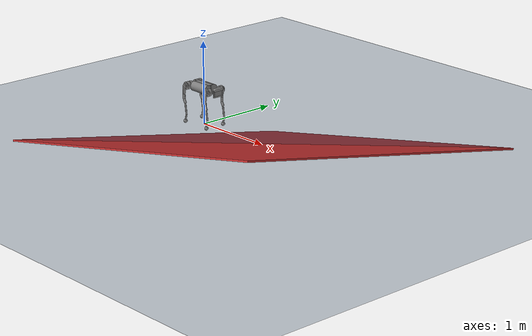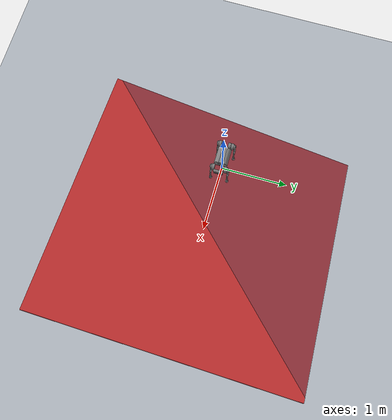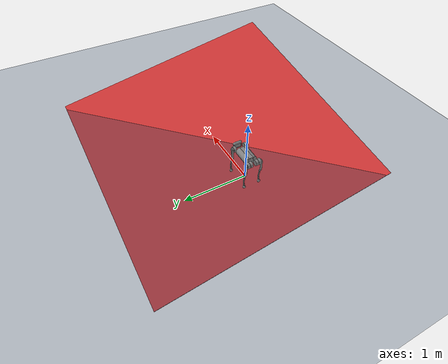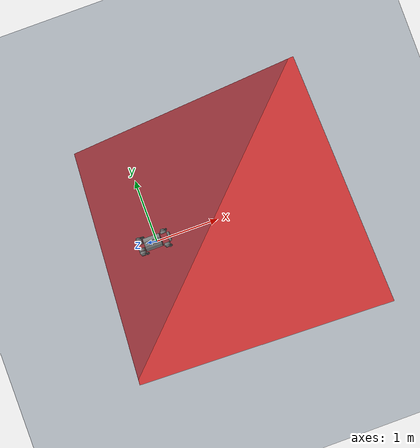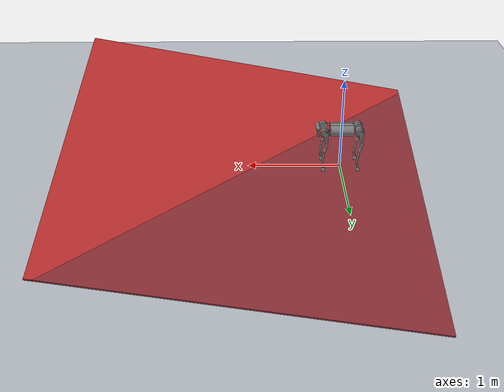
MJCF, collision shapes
<mujoco model="go1 scene">
  <option integrator="implicitfast"/>
  <include file="go1.xml"/>

  <statistic center="0 0 0.1" extent="0.8"/>

  <visual>
    <headlight diffuse="0.6 0.6 0.6" ambient="0.3 0.3 0.3" specular="0 0 0"/>
    <rgba haze="0.15 0.25 0.35 1"/>
    <global azimuth="120" elevation="-20"/>
  </visual>

  <asset>
    <texture type="skybox" builtin="gradient" rgb1="0.3 0.5 0.7" rgb2="0 0 0" width="512" height="3072"/>
    <texture type="2d" name="groundplane" builtin="checker" mark="edge" rgb1="0.2 0.3 0.4" rgb2="0.1 0.2 0.3"
      markrgb="0.8 0.8 0.8" width="300" height="300"/>
    <material name="groundplane" texture="groundplane" texuniform="true" texrepeat="5 5" reflectance="0.2"/>
  </asset>

  <worldbody>
    <light pos="0 0 1.5" dir="0 0 -1" directional="true"/>
    <geom name="floor" size="0 0 0.05" type="plane" material="groundplane"/>

    <body name="slope1" pos="1.0 0. 0.">
        <geom name="slope1" type="box" size="2. 2. 0.01" zaxis="-0.2 0.2 1." rgba="0.8 0.2 0.2 1"/>
    </body>

  </worldbody>
</mujoco>

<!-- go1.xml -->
<mujoco model="go1">
  <compiler angle="radian" meshdir="go1_meshes" autolimits="true"/>

  <option cone="elliptic" impratio="100"/>

  <!-- Default values -->
  <default>
    <!-- Defaults for class go1 -->
    <default class="go1">

      <geom friction="0.6" margin="0.001" condim="1"/>
      <joint axis="0 1 0" damping="0.5" armature="0.005"/>

      <!-- inheritrange=1 sets the limit on position controlled to joint limit-->
      <!-- ctrlrange: limits torque commanded to motor, forcerange: limit torque applied by motor-->
      <motor ctrlrange="-23.7 23.7" forcerange="-23.7 23.7"/>

      <!-- Defaults for class abduction -->
      <default class="abduction">
        <joint axis="1 0 0" damping="1" range="-0.863 0.863" frictionloss="0.3"/> <!-- Default joint is hinge -->
      </default>

      <!-- Defaults for class hip -->
      <default class="hip">
        <joint range="-0.686 4.501" frictionloss="0.3"/>
      </default>

      <!-- Defaults for class knee -->
      <default class="knee">
        <joint range="-2.818 -0.888" frictionloss="1.0"/>
        <position forcerange="-35.55 35.55"/>
      </default>

      <!-- Defaults for class visual -->
      <default class="visual">
        <geom type="mesh" contype="0" conaffinity="0" group="2" material="dark"/>
      </default>

      <!-- Defaults for class collision -->
      <!-- Geoms in this class are for collision only, not for dynamics-->
      <default class="collision">
        <geom group="3" type="capsule"/>

        <default class="hip_left1">
          <geom size="0.046 0.02" pos="0 0.045 0" quat="1 1 0 0" type="cylinder"/>
        </default>

        <default class="hip_left2">
          <geom size="0.031 0.02" pos="0 0.065 0" quat="1 1 0 0" type="cylinder"/>
        </default>

        <default class="hip_left3">
          <geom size="0.046 0.02" quat="1 1 0 0" type="cylinder"/>
        </default>

        <default class="hip_right1">
          <geom size="0.046 0.02" pos="0 -0.045 0" quat="1 1 0 0" type="cylinder"/>
        </default>

        <default class="hip_right2">
          <geom size="0.031 0.02" pos="0 -0.065 0" quat="1 1 0 0" type="cylinder"/>
        </default>

        <default class="hip_right3">
          <geom size="0.046 0.02" quat="1 1 0 0" type="cylinder"/>
        </default>

        <default class="thigh1">
          <geom size="0.015" fromto="-0.02 0 0 -0.02 0 -0.16"/>
        </default>

        <default class="thigh2">
          <geom size="0.015" fromto="0 0 0 -0.02 0 -0.1"/>
        </default>

        <default class="thigh3">
          <geom size="0.015" fromto="-0.02 0 -0.16 0 0 -0.2"/>
        </default>

        <default class="calf1">
          <geom size="0.01" fromto="0 0 0 0.02 0 -0.13"/>
        </default>

        <default class="calf2">
          <geom size="0.01" fromto="0.02 0 -0.13 0 0 -0.2"/>
        </default>

        <default class="foot">
          <geom type="sphere" size="0.023" pos="0 0 -0.213" solimp="0.9 .95 0.023" condim="3"/>
        </default>

      </default>
    </default>
  </default>

  <!-- Define assets -->
  <asset>
    <material name="dark" rgba="0.2 0.2 0.2 1"/>
    <mesh class="go1" file="trunk.stl"/>
    <mesh class="go1" file="hip.stl"/>
    <mesh class="go1" file="thigh_mirror.stl"/>
    <mesh class="go1" file="calf.stl"/>
    <mesh class="go1" file="thigh.stl"/>
  </asset>

  <!-- Define bodies - most important! -->
  <!-- World -> trunk -> hip -> thigh -> calf -->
  <worldbody>
    <light name="spotlight" mode="targetbodycom" target="trunk" pos="0 -1 2"/>

    <!-- Trunk body -->
    <body name="trunk" pos="0 0 0.445" childclass="go1">
      <!-- Cameras to track CoM -->
      <camera name="track" pos="0.846 -1.3 0.316" xyaxes="0.866 0.500 0.000 -0.171 0.296 0.940" mode="trackcom"/>
      <camera name="top" pos="-1 0 1" xyaxes="0 -1 0 0.7 0 0.7" mode="trackcom"/>
      <camera name="side" pos="0 -1 .3" xyaxes="1 0 0 0 1 2" mode="trackcom"/>
      <camera name="back" pos="-1 0 .3" xyaxes="0 -1 0 1 0 2" mode="trackcom"/>

      <site name="head" pos="0.3 0 0" rgba="1 0 0 1" size="0.02" group="5"/>

      <inertial pos="0.0223 0.002 -0.0005" quat="-0.00342088 0.705204 0.000106698 0.708996" mass="5.204"
        diaginertia="0.0716565 0.0630105 0.0168101"/>

      <!-- Trunk is a free joint (free body with 6 d.o.f), placed at CoM -->
      <freejoint/>
      <!-- Visual is from mesh -->
      <geom class="visual" mesh="trunk"/>
      <!-- Collision is from primitives -->
      <geom class="collision" size="0.125 0.04 0.057" type="box"/>
      <geom class="collision" quat="1 0 1 0" pos="0 -0.04 0" size="0.058 0.125" type="cylinder"/>
      <geom class="collision" quat="1 0 1 0" pos="0 +0.04 0" size="0.058 0.125" type="cylinder"/>
      <geom class="collision" pos="0.25 0 0" size="0.005 0.06 0.05" type="box"/>
      <geom class="collision" pos="0.25 0.06 -0.01" size="0.009 0.035"/>
      <geom class="collision" pos="0.25 -0.06 -0.01" size="0.009 0.035"/>
      <geom class="collision" pos="0.25 0 -0.05" size="0.01 0.06" quat="1 1 0 0"/>
      <geom class="collision" pos="0.255 0 0.0355" size="0.021 0.052" quat="1 1 0 0"/>
      <!-- Location for imu -->
      <site name="imu" pos="0 0 0"/>

      <!-- FR hip body -->
      <body name="FR_hip" pos="0.1881 -0.04675 0">
        <inertial pos="-0.0049166 0.00762615 -8.865e-05" quat="0.507341 0.514169 0.495027 0.482891" mass="0.68"
          diaginertia="0.000734064 0.000468438 0.000398719"/>
        <!-- joint -->
        <joint class="abduction" name="FR_hip_joint"/>
        <!-- Visual from mesh -->
        <geom class="visual" mesh="hip" quat="1 0 0 0"/>
        <!-- Collision from primitives (using defaults)-->
        <geom class="hip_right1"/>
        <geom class="hip_right2"/>

        <!-- FR thigh body -->
        <body name="FR_thigh" pos="0 -0.08 0">
          <inertial pos="-0.00304722 0.019315 -0.0305004" quat="0.65243 -0.0272313 0.0775126 0.753383" mass="1.009"
            diaginertia="0.00478717 0.00460903 0.000709268"/>
          <!-- Joint -->
          <joint class="hip" name="FR_thigh_joint"/>
          <!-- Visual from mesh-->
          <geom class="visual" mesh="thigh_mirror"/>
          <!-- Collision from primitives (using defaults) -->
          <geom class="thigh1"/>
          <geom class="thigh2"/>
          <geom class="thigh3"/>

          <!-- FR calf body -->
          <body name="FR_calf" pos="0 0 -0.213">
            <inertial pos="0.00429862 0.000976676 -0.146197" quat="0.691246 0.00357467 0.00511118 0.722592"
              mass="0.195862" diaginertia="0.00149767 0.00148468 3.58427e-05"/>
            <!-- Joint -->
            <joint class="knee" name="FR_calf_joint"/>
            <!-- Visual from mesh -->
            <geom class="visual" mesh="calf"/>
            <!-- Collision from primitives (using defaults)-->
            <geom class="calf1"/>
            <geom class="calf2"/>

            <!-- FR foot: not a separate body but welded to the calf -->
            <!-- Collision from primitive (using defaults) -->
            <geom name="FR" class="foot"/>
            <site name="FR" pos="0 0 -0.213" type="sphere" size="0.023" group="5"/>
          </body>
        </body>
      </body>

      <!-- FL bodies -->
      <body name="FL_hip" pos="0.1881 0.04675 0">
        <inertial pos="-0.0049166 -0.00762615 -8.865e-05" quat="0.482891 0.495027 0.514169 0.507341" mass="0.68"
          diaginertia="0.000734064 0.000468438 0.000398719"/>
        <joint class="abduction" name="FL_hip_joint"/>
        <geom class="visual" mesh="hip"/>
        <geom class="hip_left1"/>
        <geom class="hip_left2"/>
        <body name="FL_thigh" pos="0 0.08 0">
          <inertial pos="-0.00304722 -0.019315 -0.0305004" quat="0.753383 0.0775126 -0.0272313 0.65243" mass="1.009"
            diaginertia="0.00478717 0.00460903 0.000709268"/>
          <joint class="hip" name="FL_thigh_joint"/>
          <geom class="visual" mesh="thigh"/>
          <geom class="thigh1"/>
          <geom class="thigh2"/>
          <geom class="thigh3"/>
          <body name="FL_calf" pos="0 0 -0.213">
            <inertial pos="0.00429862 0.000976676 -0.146197" quat="0.691246 0.00357467 0.00511118 0.722592"
              mass="0.195862" diaginertia="0.00149767 0.00148468 3.58427e-05"/>
            <joint class="knee" name="FL_calf_joint"/>
            <geom class="visual" mesh="calf"/>
            <geom class="calf1"/>
            <geom class="calf2"/>
            <geom name="FL" class="foot"/>
            <site name="FL" pos="0 0 -0.213" type="sphere" size="0.023" group="5"/>
          </body>
        </body>
      </body>

      <!-- RR bodies -->
      <body name="RR_hip" pos="-0.1881 -0.04675 0">
        <inertial pos="0.0049166 0.00762615 -8.865e-05" quat="0.495027 0.482891 0.507341 0.514169" mass="0.68"
          diaginertia="0.000734064 0.000468438 0.000398719"/>
        <joint class="abduction" name="RR_hip_joint"/>
        <geom class="visual" quat="0 0 0 -1" mesh="hip"/>
        <geom class="hip_right1"/>
        <geom class="hip_right2"/>
        <geom class="hip_right3"/>
        <body name="RR_thigh" pos="0 -0.08 0">
          <inertial pos="-0.00304722 0.019315 -0.0305004" quat="0.65243 -0.0272313 0.0775126 0.753383" mass="1.009"
            diaginertia="0.00478717 0.00460903 0.000709268"/>
          <joint class="hip" name="RR_thigh_joint"/>
          <geom class="visual" mesh="thigh_mirror"/>
          <geom class="thigh1"/>
          <geom class="thigh2"/>
          <geom class="thigh3"/>
          <body name="RR_calf" pos="0 0 -0.213">
            <inertial pos="0.00429862 0.000976676 -0.146197" quat="0.691246 0.00357467 0.00511118 0.722592"
              mass="0.195862" diaginertia="0.00149767 0.00148468 3.58427e-05"/>
            <joint class="knee" name="RR_calf_joint"/>
            <geom class="visual" mesh="calf"/>
            <geom class="calf1"/>
            <geom class="calf2"/>
            <geom name="RR" class="foot"/>
            <site name="RR" pos="0 0 -0.213" type="sphere" size="0.023" group="5"/>
          </body>
        </body>
      </body>

      <!-- RL bodies -->
      <body name="RL_hip" pos="-0.1881 0.04675 0">
        <inertial pos="0.0049166 -0.00762615 -8.865e-05" quat="0.514169 0.507341 0.482891 0.495027" mass="0.68"
          diaginertia="0.000734064 0.000468438 0.000398719"/>
        <joint class="abduction" name="RL_hip_joint"/>
        <geom class="visual" quat="0 0 1 0" mesh="hip"/>
        <geom class="hip_left1"/>
        <geom class="hip_left2"/>
        <geom class="hip_left3"/>
        <body name="RL_thigh" pos="0 0.08 0">
          <inertial pos="-0.00304722 -0.019315 -0.0305004" quat="0.753383 0.0775126 -0.0272313 0.65243" mass="1.009"
            diaginertia="0.00478717 0.00460903 0.000709268"/>
          <joint class="hip" name="RL_thigh_joint"/>
          <geom class="visual" mesh="thigh"/>
          <geom class="thigh1"/>
          <geom class="thigh2"/>
          <geom class="thigh3"/>
          <body name="RL_calf" pos="0 0 -0.213">
            <inertial pos="0.00429862 0.000976676 -0.146197" quat="0.691246 0.00357467 0.00511118 0.722592"
              mass="0.195862" diaginertia="0.00149767 0.00148468 3.58427e-05"/>
            <joint class="knee" name="RL_calf_joint"/>
            <geom class="visual" mesh="calf"/>
            <geom class="calf1"/>
            <geom class="calf2"/>
            <geom name="RL" class="foot"/>
            <site name="RL" pos="0 0 -0.213" type="sphere" size="0.023" group="5"/>
          </body>
        </body>
      </body>
    </body>
  </worldbody>

  <actuator>
    <!--
      We're controlling the positions of the actuators, and transmit torque via a PD controller
      if we're controlling torques directly, we need to specify the gear ratios.
    -->
    <!-- Using default values for actuators -->
    <motor class="abduction" name="FR_hip" joint="FR_hip_joint"/>
    <motor class="hip" name="FR_thigh" joint="FR_thigh_joint"/>
    <motor class="knee" name="FR_calf" joint="FR_calf_joint"/>
    <motor class="abduction" name="FL_hip" joint="FL_hip_joint"/>
    <motor class="hip" name="FL_thigh" joint="FL_thigh_joint"/>
    <motor class="knee" name="FL_calf" joint="FL_calf_joint"/>
    <motor class="abduction" name="RR_hip" joint="RR_hip_joint"/>
    <motor class="hip" name="RR_thigh" joint="RR_thigh_joint"/>
    <motor class="knee" name="RR_calf" joint="RR_calf_joint"/>
    <motor class="abduction" name="RL_hip" joint="RL_hip_joint"/>
    <motor class="hip" name="RL_thigh" joint="RL_thigh_joint"/>
    <motor class="knee" name="RL_calf" joint="RL_calf_joint"/>
  </actuator>

  <!-- Sensors -->
  <sensor>
      <gyro site="imu" name="gyro"/>
      <velocimeter site="imu" name="local_linvel"/>
      <accelerometer site="imu" name="accelerometer"/>
      <framepos objtype="site" objname="imu" name="position"/>
      <framezaxis objtype="site" objname="imu" name="upvector"/>
      <framexaxis objtype="site" objname="imu" name="forwardvector"/>
      <framelinvel objtype="site" objname="imu" name="global_linvel"/>
      <frameangvel objtype="site" objname="imu" name="global_angvel"/>
      <framequat objtype="site" objname="imu" name="orientation"/>
      <framelinvel objtype="site" objname="FR" name="FR_global_linvel"/>
      <framelinvel objtype="site" objname="FL" name="FL_global_linvel"/>
      <framelinvel objtype="site" objname="RR" name="RR_global_linvel"/>
      <framelinvel objtype="site" objname="RL" name="RL_global_linvel"/>
      <framepos objtype="site" objname="FR" name="FR_pos" reftype="site" refname="imu"/>
      <framepos objtype="site" objname="FL" name="FL_pos" reftype="site" refname="imu"/>
      <framepos objtype="site" objname="RR" name="RR_pos" reftype="site" refname="imu"/>
      <framepos objtype="site" objname="RL" name="RL_pos" reftype="site" refname="imu"/>
      <framepos objtype="site" objname="head" name="head_pos"/>
      <contact name="FR_floor_found" geom1="FR" geom2="slope1" reduce="mindist" num="1" data="found"/>
      <contact name="FL_floor_found" geom1="FL" geom2="slope1" reduce="mindist" num="1" data="found"/>
      <contact name="RR_floor_found" geom1="RR" geom2="slope1" reduce="mindist" num="1" data="found"/>
      <contact name="RL_floor_found" geom1="RL" geom2="slope1" reduce="mindist" num="1" data="found"/>
    </sensor>

  <!-- Initial values -->
  <keyframe>
    <key name="home" qpos="0 0 0.33 1 0 0 0 0.0 0.8 -1.5 0.0 0.8 -1.5 0.0 0.8 -1.5 0.0 0.8 -1.5"
      ctrl="0 0 0 0 0 0 0 0 0 0 0 0"/>
  </keyframe>
</mujoco>
